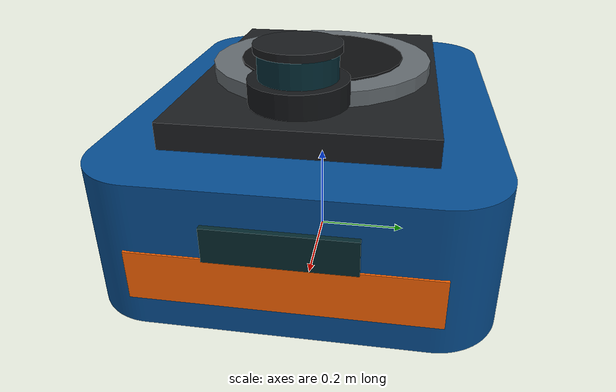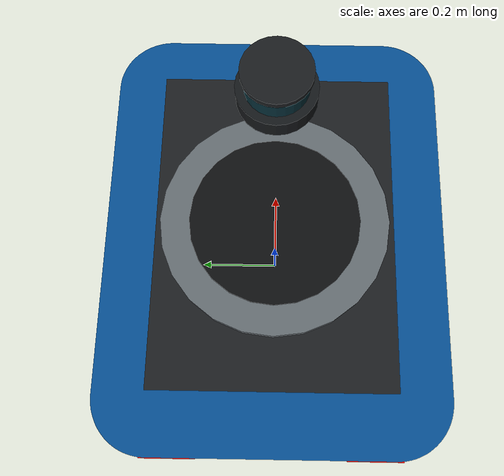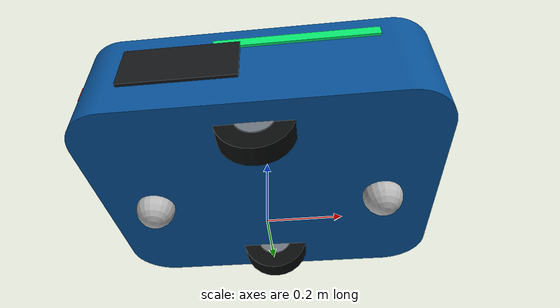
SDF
<?xml version="1.0"?>
<sdf version="1.10">
  <model name="swarmroute_amr">
    <pose>0 0 0.21 0 0 0</pose>
    <link name="base_link">
      <inertial>
        <mass>150.0</mass>
        <inertia><ixx>4.0</ixx><iyy>5.8</iyy><izz>7.2</izz></inertia>
      </inertial>
      <collision name="chassis_collision">
        <geometry><box><size>0.92 0.72 0.30</size></box></geometry>
      </collision>
      <visual name="chassis_visual">
        <geometry><mesh><uri>model://swarmroute_amr/meshes/amr_shell.obj</uri></mesh></geometry>
        <material><ambient>0.015 0.12 0.22 1</ambient><diffuse>0.025 0.31 0.58 1</diffuse><specular>0.65 0.68 0.72 1</specular></material>
      </visual>
      <visual name="safety_bumper_visual">
        <pose>0.461 0 -0.035 0 0 0</pose>
        <geometry><box><size>0.025 0.54 0.095</size></box></geometry>
        <material><ambient>0.8 0.24 0.01 1</ambient><diffuse>1 0.40 0.015 1</diffuse><emissive>0.16 0.035 0 1</emissive></material>
      </visual>
      <visual name="rear_bumper_visual">
        <pose>-0.461 0 -0.035 0 0 0</pose>
        <geometry><box><size>0.025 0.54 0.095</size></box></geometry>
        <material><ambient>0.11 0.12 0.13 1</ambient><diffuse>0.20 0.22 0.24 1</diffuse><specular>0.45 0.45 0.45 1</specular></material>
      </visual>
      <visual name="top_service_deck">
        <pose>0 0 0.165 0 0 0</pose>
        <geometry><box><size>0.68 0.50 0.055</size></box></geometry>
        <material><ambient>0.045 0.05 0.055 1</ambient><diffuse>0.11 0.12 0.13 1</diffuse><specular>0.75 0.75 0.75 1</specular></material>
      </visual>
      <visual name="lift_turntable">
        <pose>0 0 0.205 0 0 0</pose>
        <geometry><cylinder><radius>0.235</radius><length>0.035</length></cylinder></geometry>
        <material><ambient>0.20 0.22 0.23 1</ambient><diffuse>0.40 0.43 0.45 1</diffuse><specular>0.85 0.85 0.82 1</specular></material>
      </visual>
      <visual name="lift_grip">
        <pose>0 0 0.224 0 0 0</pose>
        <geometry><cylinder><radius>0.175</radius><length>0.006</length></cylinder></geometry>
        <material><ambient>0.025 0.027 0.03 1</ambient><diffuse>0.055 0.06 0.065 1</diffuse></material>
      </visual>
      <visual name="front_sensor_window">
        <pose>0.473 0 0.045 0 0 0</pose>
        <geometry><box><size>0.015 0.26 0.065</size></box></geometry>
        <material><ambient>0.015 0.07 0.075 1</ambient><diffuse>0.02 0.16 0.18 1</diffuse><specular>0.9 0.9 0.9 1</specular><emissive>0 0.04 0.05 1</emissive></material>
      </visual>
      <visual name="left_status_light">
        <pose>0.11 0.371 0.08 0 0 0</pose>
        <geometry><box><size>0.42 0.012 0.028</size></box></geometry>
        <material><ambient>0.01 0.42 0.20 1</ambient><diffuse>0.02 0.90 0.42 1</diffuse><emissive>0.01 0.45 0.18 1</emissive></material>
      </visual>
      <visual name="right_status_light">
        <pose>0.11 -0.371 0.08 0 0 0</pose>
        <geometry><box><size>0.42 0.012 0.028</size></box></geometry>
        <material><ambient>0.01 0.42 0.20 1</ambient><diffuse>0.02 0.90 0.42 1</diffuse><emissive>0.01 0.45 0.18 1</emissive></material>
      </visual>
      <visual name="rear_left_light">
        <pose>-0.473 0.22 0.045 0 0 0</pose>
        <geometry><box><size>0.015 0.12 0.052</size></box></geometry>
        <material><ambient>0.45 0.01 0.005 1</ambient><diffuse>0.9 0.025 0.01 1</diffuse><emissive>0.40 0.005 0 1</emissive></material>
      </visual>
      <visual name="rear_right_light">
        <pose>-0.473 -0.22 0.045 0 0 0</pose>
        <geometry><box><size>0.015 0.12 0.052</size></box></geometry>
        <material><ambient>0.45 0.01 0.005 1</ambient><diffuse>0.9 0.025 0.01 1</diffuse><emissive>0.40 0.005 0 1</emissive></material>
      </visual>
      <visual name="left_side_panel">
        <pose>-0.18 0.372 0.015 0 0 0</pose>
        <geometry><box><size>0.30 0.014 0.13</size></box></geometry>
        <material><ambient>0.025 0.03 0.035 1</ambient><diffuse>0.07 0.08 0.09 1</diffuse><specular>0.5 0.5 0.5 1</specular></material>
      </visual>
      <visual name="right_side_panel">
        <pose>-0.18 -0.372 0.015 0 0 0</pose>
        <geometry><box><size>0.30 0.014 0.13</size></box></geometry>
        <material><ambient>0.025 0.03 0.035 1</ambient><diffuse>0.07 0.08 0.09 1</diffuse><specular>0.5 0.5 0.5 1</specular></material>
      </visual>
    </link>

    <link name="left_wheel">
      <pose relative_to="base_link">0 0.275 -0.12 1.57079632679 0 0</pose>
      <inertial><mass>2.5</mass><inertia><ixx>0.03</ixx><iyy>0.03</iyy><izz>0.03</izz></inertia></inertial>
      <collision name="collision"><geometry><cylinder><radius>0.10</radius><length>0.06</length></cylinder></geometry></collision>
      <visual name="tire"><geometry><cylinder><radius>0.10</radius><length>0.06</length></cylinder></geometry><material><ambient>0.015 0.015 0.016 1</ambient><diffuse>0.035 0.038 0.04 1</diffuse></material></visual>
      <visual name="hub"><geometry><cylinder><radius>0.052</radius><length>0.065</length></cylinder></geometry><material><ambient>0.20 0.22 0.24 1</ambient><diffuse>0.42 0.45 0.48 1</diffuse><specular>0.8 0.8 0.8 1</specular></material></visual>
    </link>
    <link name="right_wheel">
      <pose relative_to="base_link">0 -0.275 -0.12 1.57079632679 0 0</pose>
      <inertial><mass>2.5</mass><inertia><ixx>0.03</ixx><iyy>0.03</iyy><izz>0.03</izz></inertia></inertial>
      <collision name="collision"><geometry><cylinder><radius>0.10</radius><length>0.06</length></cylinder></geometry></collision>
      <visual name="tire"><geometry><cylinder><radius>0.10</radius><length>0.06</length></cylinder></geometry><material><ambient>0.015 0.015 0.016 1</ambient><diffuse>0.035 0.038 0.04 1</diffuse></material></visual>
      <visual name="hub"><geometry><cylinder><radius>0.052</radius><length>0.065</length></cylinder></geometry><material><ambient>0.20 0.22 0.24 1</ambient><diffuse>0.42 0.45 0.48 1</diffuse><specular>0.8 0.8 0.8 1</specular></material></visual>
    </link>
    <joint name="left_wheel_joint" type="revolute">
      <parent>base_link</parent><child>left_wheel</child><axis><xyz expressed_in="__model__">0 1 0</xyz></axis>
    </joint>
    <joint name="right_wheel_joint" type="revolute">
      <parent>base_link</parent><child>right_wheel</child><axis><xyz expressed_in="__model__">0 1 0</xyz></axis>
    </joint>

    <link name="front_caster">
      <pose relative_to="base_link">0.32 0 -0.15 0 0 0</pose>
      <inertial><mass>0.5</mass><inertia><ixx>0.002</ixx><iyy>0.002</iyy><izz>0.002</izz></inertia></inertial>
      <collision name="collision"><geometry><sphere><radius>0.055</radius></sphere></geometry><surface><friction><ode><mu>0.01</mu><mu2>0.01</mu2></ode></friction></surface></collision>
      <visual name="visual"><geometry><sphere><radius>0.055</radius></sphere></geometry></visual>
    </link>
    <joint name="front_caster_joint" type="ball"><parent>base_link</parent><child>front_caster</child></joint>
    <link name="rear_caster">
      <pose relative_to="base_link">-0.32 0 -0.15 0 0 0</pose>
      <inertial><mass>0.5</mass><inertia><ixx>0.002</ixx><iyy>0.002</iyy><izz>0.002</izz></inertia></inertial>
      <collision name="collision"><geometry><sphere><radius>0.055</radius></sphere></geometry><surface><friction><ode><mu>0.01</mu><mu2>0.01</mu2></ode></friction></surface></collision>
      <visual name="visual"><geometry><sphere><radius>0.055</radius></sphere></geometry></visual>
    </link>
    <joint name="rear_caster_joint" type="ball"><parent>base_link</parent><child>rear_caster</child></joint>

    <link name="lidar_link">
      <pose relative_to="base_link">0.28 0 0.27 0 0 0</pose>
      <inertial><mass>0.2</mass><inertia><ixx>0.001</ixx><iyy>0.001</iyy><izz>0.001</izz></inertia></inertial>
      <visual name="lidar_base"><pose>0 0 -0.025 0 0 0</pose><geometry><cylinder><radius>0.09</radius><length>0.045</length></cylinder></geometry><material><ambient>0.035 0.04 0.045 1</ambient><diffuse>0.08 0.09 0.10 1</diffuse><specular>0.6 0.6 0.6 1</specular></material></visual>
      <visual name="lidar_glass"><pose>0 0 0.018 0 0 0</pose><geometry><cylinder><radius>0.071</radius><length>0.055</length></cylinder></geometry><material><ambient>0.015 0.08 0.10 1</ambient><diffuse>0.02 0.18 0.22 1</diffuse><specular>0.95 0.95 0.95 1</specular><emissive>0 0.025 0.035 1</emissive></material></visual>
      <visual name="lidar_cap"><pose>0 0 0.052 0 0 0</pose><geometry><cylinder><radius>0.077</radius><length>0.014</length></cylinder></geometry><material><ambient>0.04 0.045 0.05 1</ambient><diffuse>0.10 0.11 0.12 1</diffuse><specular>0.7 0.7 0.7 1</specular></material></visual>
      <sensor name="lidar" type="gpu_lidar">
        <pose>0 0 0.05 0 0 0</pose>
        <update_rate>10</update_rate>
        <lidar>
          <scan><horizontal><samples>720</samples><resolution>1</resolution><min_angle>-3.14159265359</min_angle><max_angle>3.14159265359</max_angle></horizontal></scan>
          <range><min>0.12</min><max>18.0</max><resolution>0.01</resolution></range>
          <noise><type>gaussian</type><mean>0.0</mean><stddev>0.01</stddev></noise>
        </lidar>
        <always_on>true</always_on><visualize>false</visualize>
      </sensor>
    </link>
    <joint name="lidar_joint" type="fixed"><parent>base_link</parent><child>lidar_link</child></joint>

    <plugin filename="gz-sim-diff-drive-system" name="gz::sim::systems::DiffDrive">
      <left_joint>left_wheel_joint</left_joint>
      <right_joint>right_wheel_joint</right_joint>
      <wheel_separation>0.55</wheel_separation>
      <wheel_radius>0.10</wheel_radius>
      <odom_publish_frequency>30</odom_publish_frequency>
    </plugin>
  </model>
</sdf>
